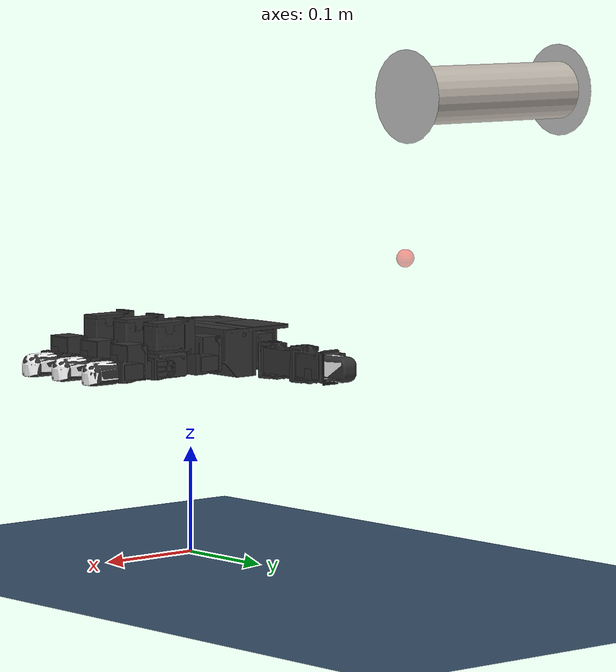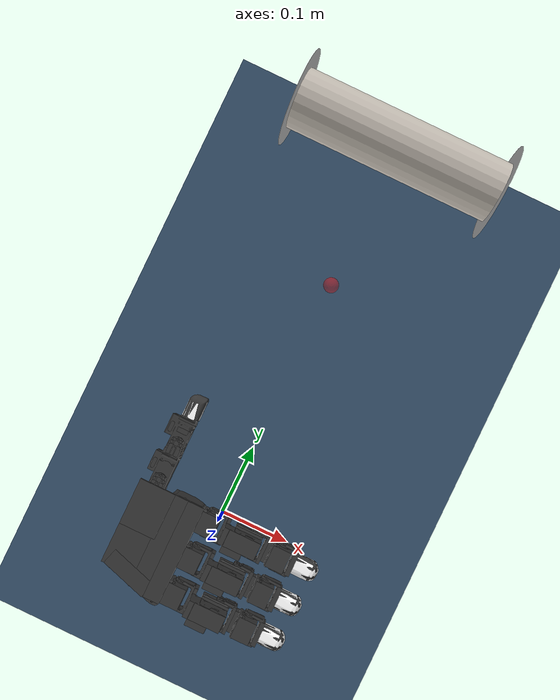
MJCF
<mujoco model="binocular_teleop">
  <include file="right_hand.xml"/>

  <statistic center="0 0.3 0.3" extent="0.6"/>

  <asset>
    <texture name="heineken_tex" type="2d" file="../images/heineken_rot.png"/>

    <material name="heineken_mat" texture="heineken_tex"
              texrepeat="1 1" texuniform="false"
              shininess="0.7" specular="0.5"/>

    <material name="silver_metal" rgba="0.8 0.8 0.8 1" shininess="1" specular="1"/>

    <texture name="bottle_logo_tex" type="2d" file="assets/bottle_logo.png"/>
    <material name="bottle_body_mat" texture="bottle_logo_tex"
              rgba="0.15 0.15 0.15 1" texrepeat="1 1" texuniform="true"/>
    <material name="bottle_accent_mat" rgba="0.7 0.08 0.08 1"/>
    <material name="bottle_cap_mat" rgba="0.85 0.1 0.1 1"/>
  </asset>

  <visual>
    <headlight diffuse="0.6 0.6 0.6" ambient="0.3 0.3 0.3" specular="0 0 0"/>
    <rgba haze="0.15 0.25 0.35 1"/>
    <global azimuth="120" elevation="-20"/>
  </visual>

  <worldbody>
    <light directional="true" diffuse=".5 .5 .5" specular="0.1 0.1 0.1"
           pos="0 0 1.5" dir="0 0 -1"/>
    <geom name="floor" type="plane" size="1 1 1" rgba="0.2 0.3 0.4 1"/>

    <body name="hand_proxy" mocap="true" pos="0 0.3 0.3">
      <geom type="sphere" size="0.008" rgba="1 0 0 0.4"
            contype="0" conaffinity="0"/>
    </body>

    <body name="bottle" pos="0.0 0.4 0.45" gravcomp="1">
      <joint type="free" name="bottle_free" damping="5"/>

      <geom name="bottle_body" type="cylinder"
            fromto="-0.09 0 0  0.09 0 0"
            size="0.025"
            material="heineken_mat"
            mass="0.15" friction="5.0 0.1 0.005" condim="6"/>

      <geom name="cap_left" type="cylinder" fromto="-0.09 0 0 -0.0901 0 0" size="0.0401" material="silver_metal"/>
      <geom name="cap_right" type="cylinder" fromto="0.09 0 0 0.0901 0 0" size="0.0401" material="silver_metal"/>
    </body>
  </worldbody>

  <equality>
    <weld body1="hand_proxy" body2="palm"
          relpose="0 0 0 0.5 -0.5 0.5 0.5"
          solref="0.01 1" solimp="0.999 0.999 0.001"/>
  </equality>
</mujoco>

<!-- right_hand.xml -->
<mujoco model="leap_rh">
  <compiler angle="radian" meshdir="./assets/"/>
  <!-- M2 Pro optimizations: pyramidal cone (~2× faster), no noslip (irrelevant for
       position-controlled teleop), fewer solver iterations (50 vs 100 default). -->
  <option integrator="implicitfast" cone="pyramidal" impratio="10"
          noslip_iterations="0" iterations="50"/>

  <!-- mesh assets -->
  <asset>
    <material name="black" rgba="0.2 0.2 0.2 1" />
    <material name="white" rgba="1 1 1 1" />

    <mesh name="palm" file="palm_right.obj"/>
    <mesh name="base" file="base.obj"/>
    <mesh name="proximal" file="proximal.obj"/>
    <mesh name="medial" file="medial.obj"/>
    <mesh name="distal" file="distal.obj"/>
    <mesh name="tip" file="tip.obj"/>
    <mesh name="thumb_base" file="thumb_base.obj"/>
    <mesh name="thumb_proximal" file="thumb_proximal.obj"/>
    <mesh name="thumb_distal" file="thumb_distal.obj"/>
    <mesh name="thumb_tip" file="thumb_tip.obj"/>
  </asset>

  <!-- defaults -->
  <default>
    <!-- constraint stiffness -->
    <geom solimp="0.999 0.999 0.001 0.0001 1" solref="0.0001 1" friction=".2"/>

    <!-- actuator defaults -->
    <position kp="3.0" kv="0.01" />
    <joint damping="0.03" frictionloss="0.001"/>

    <!-- geom class defaults -->
    <default class="visual">
      <geom group="1" type="mesh" contype="0" conaffinity="0" density="0" material="black" />
    </default>
    <default class="collision">
      <geom material="black" friction="2 0.05 0.001" condim="6"/>
    </default>
    <default class="tip">
      <geom type="mesh" mesh="tip" friction="2 0.05 0.001" condim="6" material="white" />
    </default>
    <default class="thumb_tip">
      <geom type="mesh" mesh="thumb_tip" friction="2 0.05 0.001" condim="6" material="white" />
    </default>

    <!-- joint class defaults -->
    <default class="mcp">
      <joint pos="0 0 0" axis="0 0 -1"
        limited="true" range="-0.314 2.23" />
      <position ctrlrange="-0.314 2.23" />
    </default>
    <default class="rot">
      <joint pos="0 0 0" axis="0 0 -1"
        limited="true" range="-1.047 1.047" />
      <position ctrlrange="-1.047 1.047" />
    </default>
    <default class="pip">
      <joint pos="0 0 0" axis="0 0 -1"
        limited="true" range="-0.506 1.885" />
      <position ctrlrange="-0.506 1.885" />
    </default>
    <default class="dip">
      <joint pos="0 0 0" axis="0 0 -1"
        limited="true" range="-0.366 2.042" />
      <position ctrlrange="-0.366 2.042" />
    </default>
    <default class="thumb_cmc">
      <joint pos="0 0 0" axis="0 0 -1"
        limited="true" range="-0.349 2.094" />
      <position ctrlrange="-0.349 2.094" />
    </default>
    <default class="thumb_axl">
      <joint pos="0 0 0" axis="0 0 -1"
        limited="true" range="-0.349 2.094" />
      <position ctrlrange="-0.349 2.094" />
    </default>
    <default class="thumb_mcp">
      <joint pos="0 0 0" axis="0 0 -1"
        limited="true" range="-0.47 2.443" />
      <position ctrlrange="-0.47 2.443" />
    </default>
    <default class="thumb_ipl">
      <joint pos="0 0 0" axis="0 0 -1"
        limited="true" range="-1.34 1.88" />
      <position ctrlrange="-1.34 1.88" />
    </default>
  </default>

  <!-- collision filtering -->
  <contact>
    <!-- filter the palm from all other finger bodies except the tips -->
    <exclude body1="palm" body2="if_bs" />
    <exclude body1="palm" body2="mf_bs" />
    <exclude body1="palm" body2="rf_bs" />
    <exclude body1="palm" body2="th_mp" />

    <exclude body1="palm" body2="if_px" />
    <exclude body1="palm" body2="mf_px" />
    <exclude body1="palm" body2="rf_px" />
    <exclude body1="palm" body2="th_bs" />

    <exclude body1="palm" body2="if_md" />
    <exclude body1="palm" body2="mf_md" />
    <exclude body1="palm" body2="rf_md" />
    <exclude body1="palm" body2="th_px" />

    <exclude body1="palm" body2="if_ds" />
    <exclude body1="palm" body2="mf_ds" />
    <exclude body1="palm" body2="rf_ds" />
    <exclude body1="palm" body2="th_ds" />

  </contact>

  <!-- actuators -->
  <actuator>
    <!-- index -->
    <position name="if_mcp_act" joint="if_mcp" class="mcp" />
    <position name="if_rot_act" joint="if_rot" class="rot" />
    <position name="if_pip_act" joint="if_pip" class="pip" />
    <position name="if_dip_act" joint="if_dip" class="dip" />

    <!-- middle -->
    <position name="mf_mcp_act" joint="mf_mcp" class="mcp" />
    <position name="mf_rot_act" joint="mf_rot" class="rot" />
    <position name="mf_pip_act" joint="mf_pip" class="pip" />
    <position name="mf_dip_act" joint="mf_dip" class="dip" />

    <!-- ring -->
    <position name="rf_mcp_act" joint="rf_mcp" class="mcp" />
    <position name="rf_rot_act" joint="rf_rot" class="rot" />
    <position name="rf_pip_act" joint="rf_pip" class="pip" />
    <position name="rf_dip_act" joint="rf_dip" class="dip" />

    <!-- thumb -->
    <position name="th_cmc_act" joint="th_cmc" class="thumb_cmc" />
    <position name="th_axl_act" joint="th_axl" class="thumb_axl" />
    <position name="th_mcp_act" joint="th_mcp" class="thumb_mcp" />
    <position name="th_ipl_act" joint="th_ipl" class="thumb_ipl" />
  </actuator>

  <!-- sensors -->
  <sensor>
    <!-- index -->
    <jointpos name="if_mcp_sensor" joint="if_mcp" />
    <jointpos name="if_rot_sensor" joint="if_rot" />
    <jointpos name="if_pip_sensor" joint="if_pip" />
    <jointpos name="if_dip_sensor" joint="if_dip" />

    <!-- middle -->
    <jointpos name="mf_mcp_sensor" joint="mf_mcp" />
    <jointpos name="mf_rot_sensor" joint="mf_rot" />
    <jointpos name="mf_pip_sensor" joint="mf_pip" />
    <jointpos name="mf_dip_sensor" joint="mf_dip" />

    <!-- ring -->
    <jointpos name="rf_mcp_sensor" joint="rf_mcp" />
    <jointpos name="rf_rot_sensor" joint="rf_rot" />
    <jointpos name="rf_pip_sensor" joint="rf_pip" />
    <jointpos name="rf_dip_sensor" joint="rf_dip" />

    <!-- thumb -->
    <jointpos name="th_cmc_sensor" joint="th_cmc" />
    <jointpos name="th_axl_sensor" joint="th_axl" />
    <jointpos name="th_mcp_sensor" joint="th_mcp" />
    <jointpos name="th_ipl_sensor" joint="th_ipl" />
  </sensor>

  <worldbody>
    <body name="palm" pos="0 0 0.2" quat="1 0 0 0">
      <!-- freejoint gives the palm 6DOF so the mocap weld can drive it -->
      <freejoint name="palm_free"/>
      <!-- palm -->
      <inertial pos="-0.049542 -0.042914 -0.010227" quat="0.565586 0.427629 -0.574956 0.408254" mass="0.237" diaginertia="0.000407345 0.000304759 0.000180736"/>
      <geom name="palm_visual" pos="-0.02 0.02575 -0.0347" quat="1 0 0 0" class="visual" mesh="palm"/>
      <geom name="palm_collision_1" size="0.011 0.013 0.017" pos="-0.009 0.008 -0.011" type="box" class="collision"/>
      <geom name="palm_collision_2" size="0.011 0.013 0.017" pos="-0.009 -0.037 -0.011" type="box" class="collision"/>
      <geom name="palm_collision_3" size="0.011 0.013 0.017" pos="-0.009 -0.082 -0.011" type="box" class="collision"/>
      <geom name="palm_collision_4" size="0.029 0.01 0.023" pos="-0.066 -0.078 -0.0115" quat="0.989016 0 0 -0.147806" type="box" class="collision"/>
      <geom name="palm_collision_5" size="0.01 0.06 0.015" pos="-0.03 -0.035 -0.003" type="box" class="collision"/>
      <geom name="palm_collision_6" size="0.005 0.06 0.01" pos="-0.032 -0.035 -0.024" quat="0.923956 0 0.382499 0" type="box" class="collision"/>
      <geom name="palm_collision_7" size="0.012 0.058 0.023" pos="-0.048 -0.033 -0.0115" type="box" class="collision"/>
      <geom name="palm_collision_8" size="0.022 0.026 0.023" pos="-0.078 -0.053 -0.0115" type="box" class="collision"/>
      <geom name="palm_collision_9" size="0.002 0.018 0.017" pos="-0.098 -0.009 -0.006" type="box" class="collision"/>
      <geom name="palm_collision_10" size="0.022 0.028 0.002" pos="-0.078 -0.003 0.01" type="box" class="collision"/>

      <!-- index -->
      <body name="if_bs" pos="-0.007 0.023 -0.0187" quat="0.500003 0.5 0.5 -0.499997">
        <inertial pos="-0.022516 0.033882 0.016359" quat="0.388092 0.677951 -0.247713 0.573067" mass="0.044" diaginertia="1.74972e-05 1.61504e-05 7.21342e-06"/>
        <joint name="if_mcp" class="mcp"/>
        <geom name="if_bs_visual" pos="0.0084 0.0077 0.01465" quat="1 0 0 0" class="visual" mesh="base"/>
        <geom name="if_bs_collision_1" size="0.01 0.003 0.017" pos="0 0.018 0.0147" type="box" class="collision"/>
        <geom name="if_bs_collision_2" size="0.014 0.02 0.01" pos="-0.027 0.042 0.015" type="box" class="collision"/>
        <geom name="if_bs_collision_3" size="0.017 0.003 0.01" pos="-0.0262 0.02 0.0146" type="box" class="collision"/>
        <geom name="if_bs_collision_4" size="0.01 0.012 0.004" pos="-0.0295 0.035 0.029" type="box" class="collision"/>
        <geom name="if_bs_collision_5" size="0.007 0.01 0.002" pos="0 0.005 0.03" type="box" class="collision"/>
        <geom name="if_bs_collision_6" size="0.007 0.01 0.002" pos="0 0.005 -0.001" type="box" class="collision"/>

        <body name="if_px" pos="-0.0122 0.0381 0.0145" quat="0.500003 -0.5 -0.499997 0.5">
          <inertial pos="0.0075 -0.0002 -0.011" quat="0 0.707107 0 0.707107" mass="0.032" diaginertia="4.8853e-06 4.3733e-06 3.0933e-06"/>
          <joint name="if_rot" class="rot"/>
          <geom name="if_px_visual" pos="0.0096 0.0002 0.0007" quat="0.500003 -0.5 -0.5 -0.499997" class="visual" mesh="proximal"/>
          <geom name="if_px_collision" size="0.017 0.013 0.011" pos="0.0075 -0.0002 -0.011" type="box" class="collision"/>

          <body name="if_md" pos="0.015 0.0143 -0.013" quat="0.500003 0.5 -0.5 0.499997">
            <inertial pos="0.0054215 -0.029148 0.015" quat="0.687228 0.687228 0.166487 0.166487" mass="0.037" diaginertia="8.28004e-06 8.1598e-06 5.39516e-06"/>
            <joint name="if_pip" class="pip"/>
            <geom name="if_md_visual" pos="0.0211 -0.0084 0.0097" quat="2.67949e-08 -1 0 0" class="visual" mesh="medial"/>
            <geom name="if_md_collision_1" size="0.008 0.003 0.013" pos="0 -0.02 0.015" type="box" class="collision"/>
            <geom name="if_md_collision_2" size="0.01 0.002 0.017" pos="0 -0.016 0.015" type="box" class="collision"/>
            <geom name="if_md_collision_3" size="0.007 0.01 0.002" pos="0 -0.0045 0.03" type="box" class="collision"/>
            <geom name="if_md_collision_4" size="0.007 0.01 0.002" pos="0 -0.0045 0" type="box" class="collision"/>
            <geom name="if_md_collision_5" size="0.017 0.011 0.013" pos="0.0075 -0.035 0.015" type="box" class="collision"/>

            <body name="if_ds" pos="0 -0.0361 0.0002">
              <inertial pos="-0.0008794 -0.027019 0.014594" quat="0.702905 0.710643 -0.0212937 -0.0214203" mass="0.016" diaginertia="3.71863e-06 3.02396e-06 1.6518e-06"/>
              <joint name="if_dip" class="dip"/>
              <geom name="if_ds_visual" pos="0.0132 -0.0061 0.0144" quat="2.67949e-08 1 0 0" class="visual" mesh="distal"/>
              <geom name="if_ds_collision_1" size="0.01 0.003 0.015" pos="0 -0.017 0.015" type="box" class="collision"/>
              <geom name="if_ds_collision_2" size="0.007 0.011 0.002" pos="0 -0.006 0.03" type="box" class="collision"/>
              <geom name="if_ds_collision_3" size="0.007 0.011 0.002" pos="0 -0.006 -0.001" type="box" class="collision"/>

              <geom name="if_tip" class="tip"/>
              <site name="if_tip_site" pos="0 -0.028 0.015" size="0.004" rgba="1 0 0 1"/>
            </body>

          </body>
        </body>
      </body>  <!-- index -->

      <!-- middle -->
      <body name="mf_bs" pos="-0.0071 -0.0224 -0.0187" quat="0.500003 0.5 0.5 -0.499997">
        <inertial pos="-0.022516 0.033882 0.016359" quat="0.388092 0.677951 -0.247713 0.573067" mass="0.044" diaginertia="1.74972e-05 1.61504e-05 7.21342e-06"/>
        <joint name="mf_mcp" class="mcp"/>
        <geom name="mf_bs_visual" pos="0.0084 0.0077 0.01465" quat="1 0 0 0" class="visual" mesh="base"/>
        <geom name="mf_bs_collision_1" size="0.01 0.003 0.017" pos="0 0.018 0.0147" type="box" class="collision"/>
        <geom name="mf_bs_collision_2" size="0.014 0.02 0.01" pos="-0.027 0.042 0.015" type="box" class="collision"/>
        <geom name="mf_bs_collision_3" size="0.017 0.003 0.01" pos="-0.0262 0.02 0.0146" type="box" class="collision"/>
        <geom name="mf_bs_collision_4" size="0.01 0.012 0.004" pos="-0.0295 0.035 0.029" type="box" class="collision"/>
        <geom name="mf_bs_collision_5" size="0.007 0.01 0.002" pos="0 0.005 0.03" type="box" class="collision"/>
        <geom name="mf_bs_collision_6" size="0.007 0.01 0.002" pos="0 0.005 -0.001" type="box" class="collision"/>

        <body name="mf_px" pos="-0.0122 0.0381 0.0145" quat="0.500003 -0.5 -0.499997 0.5">
          <inertial pos="0.0075 -0.0002 -0.011" quat="0 0.707107 0 0.707107" mass="0.032" diaginertia="4.8853e-06 4.3733e-06 3.0933e-06"/>
          <joint name="mf_rot" class="rot"/>
          <geom name="mf_px_visual" pos="0.0096 0.0003 0.0007" quat="0.500003 -0.5 -0.5 -0.499997" class="visual" mesh="proximal"/>
          <geom name="mf_px_collision" size="0.017 0.013 0.011" pos="0.0075 -0.0002 -0.011" type="box" class="collision"/>

          <body name="mf_md" pos="0.015 0.0143 -0.013" quat="0.500003 0.5 -0.5 0.499997">
            <inertial pos="0.0054215 -0.029148 0.015" quat="0.687228 0.687228 0.166487 0.166487" mass="0.037" diaginertia="8.28004e-06 8.1598e-06 5.39516e-06"/>
            <joint name="mf_pip" class="pip"/>
            <geom name="mf_md_visual" pos="0.0211 -0.0084 0.0097" quat="1.32679e-06 -1 0 0" class="visual" mesh="medial"/>
            <geom name="mf_md_collision_1" size="0.008 0.003 0.013" pos="0 -0.02 0.015" type="box" class="collision"/>
            <geom name="mf_md_collision_2" size="0.01 0.002 0.017" pos="0 -0.016 0.015" type="box" class="collision"/>
            <geom name="mf_md_collision_3" size="0.007 0.01 0.002" pos="0 -0.0045 0.03" type="box" class="collision"/>
            <geom name="mf_md_collision_4" size="0.007 0.01 0.002" pos="0 -0.0045 0" type="box" class="collision"/>
            <geom name="mf_md_collision_5" size="0.017 0.011 0.013" pos="0.0075 -0.035 0.015" type="box" class="collision"/>

            <body name="mf_ds" pos="0 -0.0361 0.0002">
              <inertial pos="-0.0008794 -0.027019 0.014594" quat="0.702905 0.710643 -0.0212937 -0.0214203" mass="0.016" diaginertia="3.71863e-06 3.02396e-06 1.6518e-06"/>
              <joint name="mf_dip" class="dip"/>
              <geom name="mf_ds_visual" pos="0.0132 -0.0061 0.0145" quat="1.32679e-06 1 0 0" class="visual" mesh="distal"/>
              <geom name="mf_ds_collision_1" size="0.01 0.003 0.015" pos="0 -0.017 0.015" type="box" class="collision"/>
              <geom name="mf_ds_collision_2" size="0.007 0.011 0.002" pos="0 -0.006 0.03" type="box" class="collision"/>
              <geom name="mf_ds_collision_3" size="0.007 0.011 0.002" pos="0 -0.006 -0.001" type="box" class="collision"/>

              <geom name="mf_tip" class="tip"/>
              <site name="mf_tip_site" pos="0 -0.028 0.015" size="0.004" rgba="0 1 0 1"/>
            </body>

          </body>
        </body>
      </body>  <!-- middle -->

      <!-- ring -->
      <body name="rf_bs" pos="-0.00709 -0.0678 -0.0187" quat="0.500003 0.5 0.5 -0.499997">
        <inertial pos="-0.022516 0.033882 0.016359" quat="0.388092 0.677951 -0.247713 0.573067" mass="0.044" diaginertia="1.74972e-05 1.61504e-05 7.21342e-06"/>
        <joint name="rf_mcp" class="mcp"/>
        <geom name="rf_bs_visual" pos="0.0084 0.0077 0.01465" quat="1 0 0 0" class="visual" mesh="base"/>
        <geom name="rf_bs_collision_1" size="0.01 0.003 0.017" pos="0 0.018 0.0147" type="box" class="collision"/>
        <geom name="rf_bs_collision_2" size="0.014 0.02 0.01" pos="-0.027 0.042 0.015" type="box" class="collision"/>
        <geom name="rf_bs_collision_3" size="0.017 0.003 0.01" pos="-0.0262 0.02 0.0146" type="box" class="collision"/>
        <geom name="rf_bs_collision_4" size="0.01 0.012 0.004" pos="-0.0295 0.035 0.029" type="box" class="collision"/>
        <geom name="rf_bs_collision_5" size="0.007 0.01 0.002" pos="0 0.005 0.03" type="box" class="collision"/>
        <geom name="rf_bs_collision_6" size="0.007 0.01 0.002" pos="0 0.005 -0.001" type="box" class="collision"/>

        <body name="rf_px" pos="-0.0122 0.0381 0.0145" quat="0.500003 -0.5 -0.499997 0.5">
          <inertial pos="0.0075 -0.0002 -0.011" quat="0 0.707107 0 0.707107" mass="0.032" diaginertia="4.8853e-06 4.3733e-06 3.0933e-06"/>
          <joint name="rf_rot" class="rot"/>
          <geom name="rf_px_visual" pos="0.0096 0.0003 0.0007" quat="0.500003 -0.5 -0.5 -0.499997" class="visual" mesh="proximal"/>
          <geom name="rf_px_collision" size="0.017 0.013 0.011" pos="0.0075 -0.0002 -0.011" type="box" class="collision"/>

          <body name="rf_md" pos="0.015 0.0143 -0.013" quat="0.500003 0.5 -0.5 0.499997">
            <inertial pos="0.0054215 -0.029148 0.015" quat="0.687228 0.687228 0.166487 0.166487" mass="0.037" diaginertia="8.28004e-06 8.1598e-06 5.39516e-06"/>
            <joint name="rf_pip" class="pip"/>
            <geom name="rf_md_visual" pos="0.0211 -0.0084 0.0097" quat="1.32679e-06 -1 0 0" class="visual" mesh="medial"/>
            <geom name="rf_md_collision_1" size="0.008 0.003 0.013" pos="0 -0.02 0.015" type="box" class="collision"/>
            <geom name="rf_md_collision_2" size="0.01 0.002 0.017" pos="0 -0.016 0.015" type="box" class="collision"/>
            <geom name="rf_md_collision_3" size="0.007 0.01 0.002" pos="0 -0.0045 0.03" type="box" class="collision"/>
            <geom name="rf_md_collision_4" size="0.007 0.01 0.002" pos="0 -0.0045 0" type="box" class="collision"/>
            <geom name="rf_md_collision_5" size="0.017 0.011 0.013" pos="0.0075 -0.035 0.015" type="box" class="collision"/>

            <body name="rf_ds" pos="0 -0.03609 0.0002">
              <inertial pos="-0.0008794 -0.027019 0.014594" quat="0.702905 0.710643 -0.0212937 -0.0214203" mass="0.016" diaginertia="3.71863e-06 3.02396e-06 1.6518e-06"/>
              <joint name="rf_dip" class="dip"/>
              <geom name="rf_ds_visual" pos="0.0132 -0.0061 0.0145" quat="1.32679e-06 1 0 0" class="visual" mesh="distal"/>
              <geom name="rf_ds_collision_1" size="0.01 0.003 0.015" pos="0 -0.017 0.015" type="box" class="collision"/>
              <geom name="rf_ds_collision_2" size="0.007 0.011 0.002" pos="0 -0.006 0.03" type="box" class="collision"/>
              <geom name="rf_ds_collision_3" size="0.007 0.011 0.002" pos="0 -0.006 -0.001" type="box" class="collision"/>

              <geom name="rf_tip" class="tip"/>
              <site name="rf_tip_site" pos="0 -0.028 0.015" size="0.004" rgba="0 0 1 1"/>
            </body>

          </body>
        </body>
      </body>  <!-- ring -->

      <!-- thumb -->
      <body name="th_mp" pos="-0.0693 -0.0012 -0.0216" quat="0.707109 0 0.707105 0">
        <inertial pos="0.0075 -0.0002 -0.011" quat="0 0.707107 0 0.707107" mass="0.032" diaginertia="4.8853e-06 4.3733e-06 3.0933e-06"/>
        <joint name="th_cmc" class="thumb_cmc"/>
        <geom name="th_mp_visual" pos="-0.0053 0.0003 0.00078" quat="0.500003 -0.5 -0.5 -0.499997" class="visual" mesh="proximal"/>
        <geom name="th_mp_collision" size="0.017 0.013 0.011" pos="-0.0075 -0.0002 -0.011" type="box" class="collision"/>

        <body name="th_bs" pos="0 0.0143 -0.013" quat="0.500003 0.5 -0.5 0.499997">
          <inertial pos="0 0 -0.0070806" quat="0.707107 0.707107 0 0" mass="0.003" diaginertia="6.1932e-07 5.351e-07 2.1516e-07"/>
          <joint name="th_axl" class="thumb_axl"/>
          <geom name="th_bs_visual" pos="0.01196 0 -0.0158" quat="0.707109 0.707105 0 0" class="visual" mesh="thumb_base"/>
          <geom name="th_bs_collision_1" size="0.009 0.0165 0.002" pos="0 0 -0.0015" type="box" class="collision"/>
          <geom name="th_bs_collision_2" size="0.007 0.002 0.01" pos="0 -0.015 -0.013" type="box" class="collision"/>
          <geom name="th_bs_collision_3" size="0.007 0.002 0.01" pos="0 0.015 -0.013" type="box" class="collision"/>

          <body name="th_px" pos="0 0.0145 -0.017" quat="0.707109 -0.707105 0 0">
            <inertial pos="-0.0020593 0.015912 -0.013733" quat="0.698518 0.697382 -0.104933 0.121324" mass="0.038" diaginertia="9.87104e-06 9.32653e-06 4.36203e-06"/>
            <joint name="th_mcp" class="thumb_mcp"/>
            <geom name="th_px_visual" pos="0.0439 0.0579 -0.0086" quat="1 0 0 0" class="visual" mesh="thumb_proximal"/>
            <geom name="th_px_collision_1" size="0.01 0.02 0.012" pos="0 0.0105 -0.014" type="box" class="collision"/>
            <geom name="th_px_collision_2" size="0.01 0.002 0.016" pos="0 0.031 -0.015" type="box" class="collision"/>
            <geom name="th_px_collision_3" size="0.007 0.01 0.002" pos="0 0.042 0.001" type="box" class="collision"/>
            <geom name="th_px_collision_4" size="0.007 0.01 0.002" pos="0 0.042 -0.029" type="box" class="collision"/>
            <geom name="th_px_collision_5" size="0.005 0.012 0.009" pos="-0.0135 0.0175 -0.011656" type="box" class="collision"/>

            <body name="th_ds" pos="0 0.0466 0.0002" quat="1.32679e-06 0 0 1">
              <inertial pos="0.00096191 -0.024203 -0.014419" quat="0.35287 0.311272 -0.632839 0.614904" mass="0.049" diaginertia="2.08591e-05 2.0402e-05 4.71335e-06"/>
              <joint name="th_ipl" class="thumb_ipl"/>
              <geom name="th_ds_visual" pos="0.0625 0.0784 0.0489" quat="1 0 0 0" class="visual" mesh="thumb_distal"/>
              <geom name="th_ds_collision_1" size="0.01 0.018 0.012" pos="0 -0.0085 -0.015" type="box" class="collision"/>
              <geom name="th_ds_collision_2" size="0.01 0.002 0.015" pos="0 -0.029 -0.014" type="box" class="collision"/>
              <geom name="th_ds_collision_3" size="0.004 0.012 0.009" pos="0.015 -0.0175 -0.0115" type="box" class="collision"/>

              <geom name="th_tip" class="thumb_tip"/>
              <site name="th_tip_site" pos="0 -0.030 -0.015" size="0.004" rgba="1 1 0 1"/>
            </body>

          </body>
        </body>
      </body>  <!-- thumb -->

    </body>  <!-- palm -->
  </worldbody>
</mujoco>
